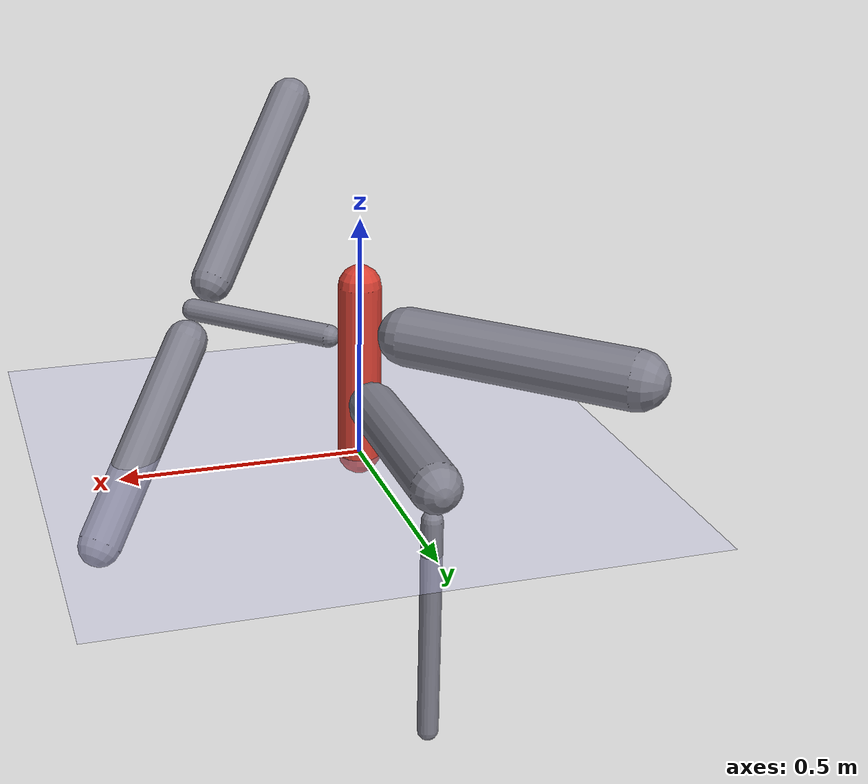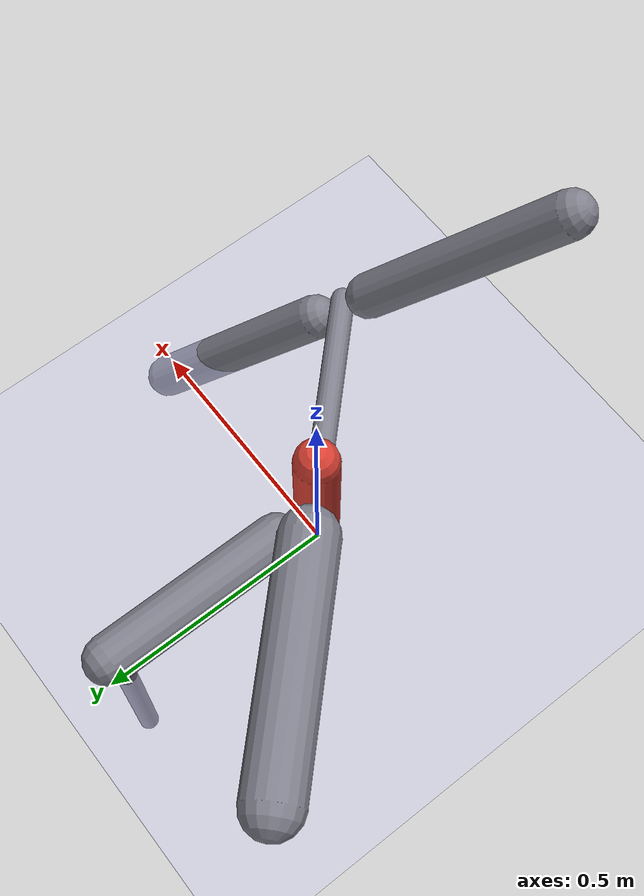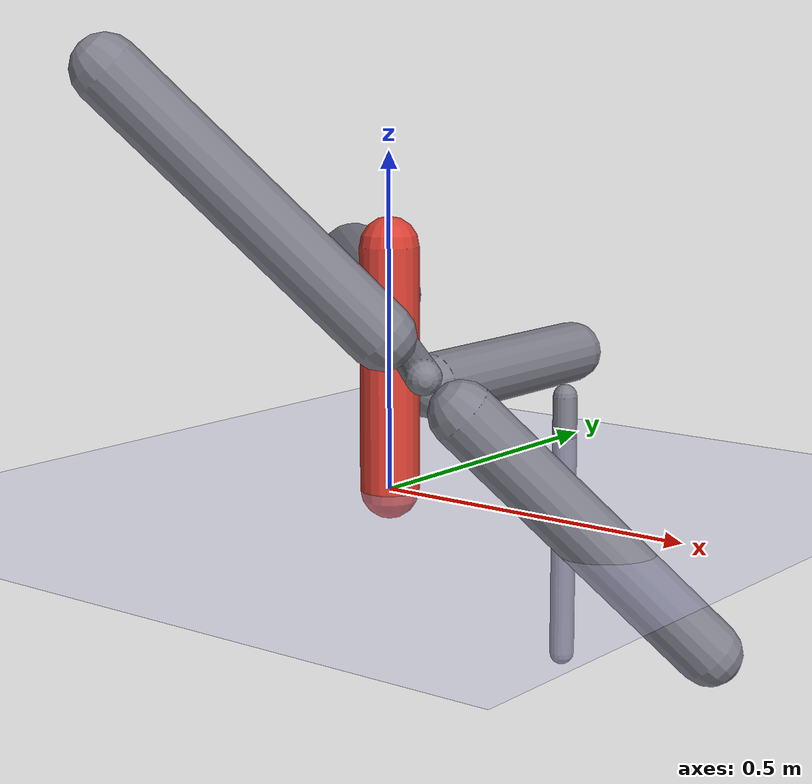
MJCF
<?xml version='1.0' encoding='UTF-8'?>
<mujoco model="robot_model">
  <worldbody>
    <light name="light" pos="0 -3 10" dir="0 0.5 -1" diffuse=".8 .8 .8" specular="0.1 0.1 0.1"/>
    <geom name="floor" type="plane" size="10.0 10.0 0.1" pos="0 0 0" rgba="0.8 0.8 1 1" contype="2" conaffinity="1"/>
    <body name="limb0" pos="0 0 0">
      <geom name="limb0_geom" type="capsule" fromto="0 0 0 0 0 0.3618207359286113" size="0.04416170408515277" density="558.8104356074043" rgba="0.85 0.25 0.2 1" contype="1" conaffinity="2"/>
      <site type="sphere" size="0.01" name="limb0_site0" pos="0.050764486934666835 -0.05076448693466686 0.24314168128242727" quat="0.7071067811865476 0.5000000000000001 0.49999999999999983 0.0"/>
      <site type="sphere" size="0.01" name="limb0_site1" pos="-0.07634318264731961 0.07634318264731962 0.27416200844378286" quat="0.7071067811865476 -0.5 -0.4999999999999999 0.0"/>
      <site type="sphere" size="0.01" name="limb0_site2" pos="5.972666547050336e-18 0.09754104695670195 0.14079242089954755" quat="0.7071067811865476 -0.7071067811865475 4.329780281177466e-17 0.0"/>
      <freejoint name="limb0_root"/>
      <body name="limb1" pos="0.050764486934666835 -0.05076448693466686 0.24314168128242727" quat="0.7071067811865476 0.5000000000000001 0.49999999999999983 0.0">
        <geom name="limb1_geom" type="capsule" fromto="0 0 0 0 0 0.3321329543947403" size="0.023630121824764875" density="638.956906255138" rgba="0.5 0.5 0.55 1" contype="1" conaffinity="2"/>
        <site type="sphere" size="0.01" name="limb1_site0" pos="0.07279444788635324 0.0 0.31705096090663826" quat="0.7071067811865476 -0.0 0.7071067811865475 0.0"/>
        <site type="sphere" size="0.01" name="limb1_site1" pos="-0.07279444788635324 8.91474875997213e-18 0.31705096090663826" quat="0.7071067811865476 -8.659560562354932e-17 -0.7071067811865475 0.0"/>
        <body name="limb2" pos="0.07279444788635324 0.0 0.31705096090663826" quat="0.7071067811865476 -0.0 0.7071067811865475 0.0">
          <geom name="limb2_geom" type="capsule" fromto="0 0 0 0 0 0.470861821227147" size="0.045164326061588364" density="752.3017237726272" rgba="0.5 0.5 0.55 1" contype="1" conaffinity="2"/>
          <joint name="joint_limb1_limb2_0" type="hinge" axis="1 0 0" range="-62.522862484907556 62.522862484907556" damping="1.1443977256658364"/>
        </body>
        <body name="limb3" pos="-0.07279444788635324 8.91474875997213e-18 0.31705096090663826" quat="0.7071067811865476 -8.659560562354932e-17 -0.7071067811865475 0.0">
          <geom name="limb3_geom" type="capsule" fromto="0 0 0 0 0 0.470861821227147" size="0.045164326061588364" density="752.3017237726272" rgba="0.5 0.5 0.55 1" contype="1" conaffinity="2"/>
          <joint name="joint_limb1_limb3_0" type="hinge" axis="1 0 0" range="-62.522862484907556 62.522862484907556" damping="1.1443977256658364"/>
        </body>
        <joint name="joint_limb0_limb1_0" type="hinge" axis="1 0 0" range="-114.21131105064978 114.21131105064978" damping="1.8099152808526051"/>
      </body>
      <body name="limb4" pos="-0.07634318264731961 0.07634318264731962 0.27416200844378286" quat="0.7071067811865476 -0.5 -0.4999999999999999 0.0">
        <geom name="limb4_geom" type="capsule" fromto="0 0 0 0 0 0.47957746997510614" size="0.05980386020941296" density="768.0361114472769" rgba="0.5 0.5 0.55 1" contype="1" conaffinity="2"/>
        <joint name="joint_limb0_limb4_0" type="hinge" axis="0 1 0" range="-72.93121601967704 72.93121601967704" damping="2.5320059135812105"/>
      </body>
      <body name="limb5" pos="5.972666547050336e-18 0.09754104695670195 0.14079242089954755" quat="0.7071067811865476 -0.7071067811865475 4.329780281177466e-17 0.0">
        <geom name="limb5_geom" type="capsule" fromto="0 0 0 0 0 0.38445715119589996" size="0.04937934287154917" density="1145.6477492907027" rgba="0.5 0.5 0.55 1" contype="1" conaffinity="2"/>
        <site type="sphere" size="0.01" name="limb5_site0" pos="4.529208927165191e-18 0.07396759507016396 0.36800629874894675" quat="0.7071067811865476 -0.7071067811865475 4.329780281177466e-17 0.0"/>
        <body name="limb6" pos="4.529208927165191e-18 0.07396759507016396 0.36800629874894675" quat="0.7071067811865476 -0.7071067811865475 4.329780281177466e-17 0.0">
          <geom name="limb6_geom" type="capsule" fromto="0 0 0 0 0 0.4454560360982303" size="0.020588252198614772" density="1184.9560320530754" rgba="0.5 0.5 0.55 1" contype="1" conaffinity="2"/>
          <joint name="joint_limb5_limb6_0" type="hinge" axis="0 0 1" range="-107.10981394243396 107.10981394243396" damping="0.4663874587154333"/>
        </body>
        <joint name="joint_limb0_limb5_0" type="hinge" axis="1 0 0" range="-112.74239286245599 112.74239286245599" damping="2.8656018014200497"/>
      </body>
    </body>
  </worldbody>
  <actuator>
    <position name="position_actuator_joint_limb0_limb1_0" joint="joint_limb0_limb1_0" gear="1.047665252367243" inheritrange="1" forcerange="-27.64112337238295 27.64112337238295" forcelimited="true" kp="100.0"/>
    <position name="position_actuator_joint_limb1_limb2_0" joint="joint_limb1_limb2_0" gear="1.4303201780230668" inheritrange="1" forcerange="-12.801583793609945 12.801583793609945" forcelimited="true" kp="100.0"/>
    <position name="position_actuator_joint_limb1_limb3_0" joint="joint_limb1_limb3_0" gear="1.4303201780230668" inheritrange="1" forcerange="-12.801583793609945 12.801583793609945" forcelimited="true" kp="100.0"/>
    <position name="position_actuator_joint_limb0_limb4_0" joint="joint_limb0_limb4_0" gear="1.6786785510707112" inheritrange="1" forcerange="-24.13332474609838 24.13332474609838" forcelimited="true" kp="100.0"/>
    <position name="position_actuator_joint_limb0_limb5_0" joint="joint_limb0_limb5_0" gear="1.9518892848869696" inheritrange="1" forcerange="-23.489871673421202 23.489871673421202" forcelimited="true" kp="100.0"/>
    <position name="position_actuator_joint_limb5_limb6_0" joint="joint_limb5_limb6_0" gear="2.0" inheritrange="1" forcerange="-3.7310996697234664 3.7310996697234664" forcelimited="true" kp="100.0"/>
  </actuator>
  <contact>
    <pair geom1="limb0_geom" geom2="limb1_geom"/>
    <pair geom1="limb1_geom" geom2="limb2_geom"/>
    <pair geom1="limb1_geom" geom2="limb3_geom"/>
    <pair geom1="limb0_geom" geom2="limb4_geom"/>
    <pair geom1="limb0_geom" geom2="limb5_geom"/>
    <pair geom1="limb5_geom" geom2="limb6_geom"/>
  </contact>
</mujoco>
